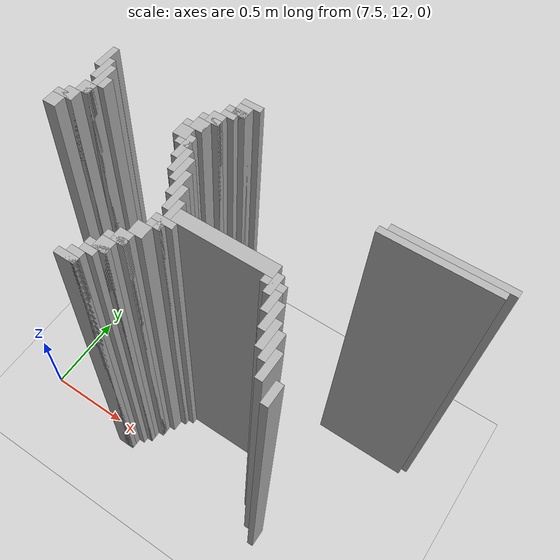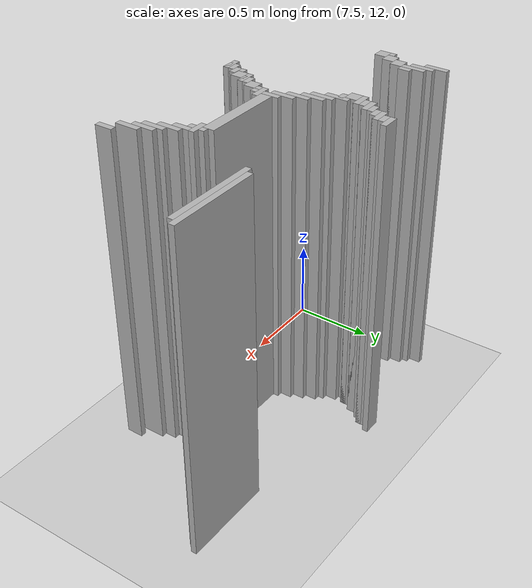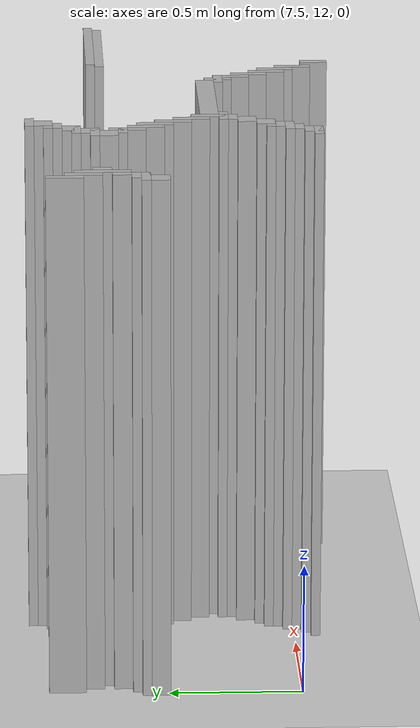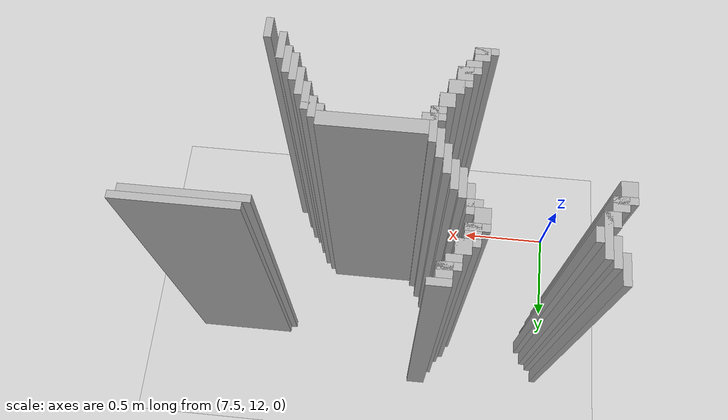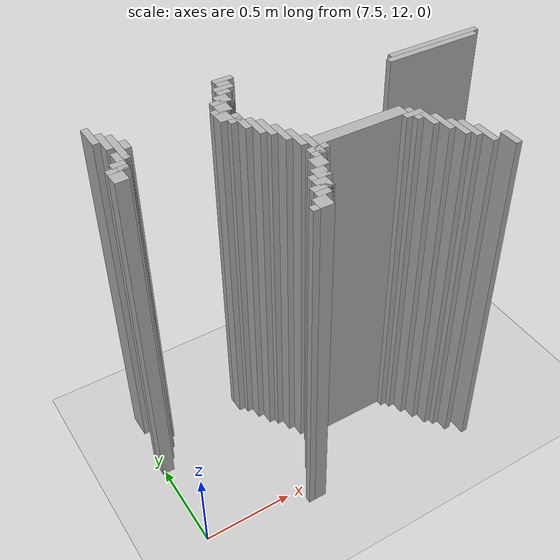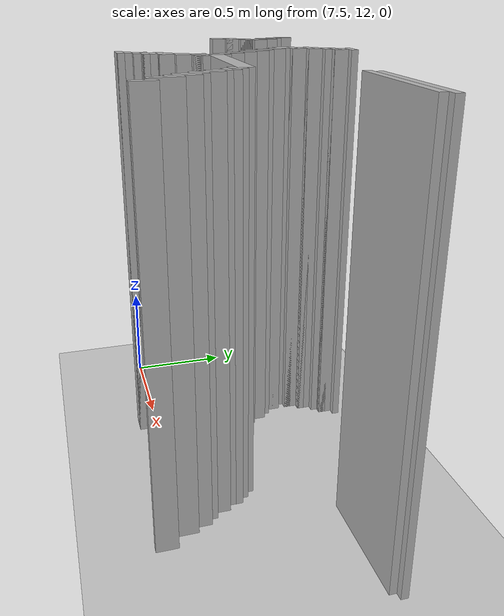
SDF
<sdf version="1.6">
 <world name="slam_world">
  <model name="ground_plane">
   <static>true</static>
   <link name="link">
    <collision name="collision">
     <geometry><plane><normal>0 0 1</normal><size>100 100</size></plane></geometry>
    </collision>
    <visual name="visual">
     <geometry><plane><normal>0 0 1</normal><size>100 100</size></plane></geometry>
     <material>
      <ambient>0.8 0.8 0.8 1</ambient>
      <diffuse>0.8 0.8 0.8 1</diffuse>
      <specular>0.8 0.8 0.8 1</specular>
     </material>
    </visual>
   </link>
  </model>
  <model name="wall_1472">
   <static>true</static>
   <pose>8.265661252900232 12.998839907192576 1.0 0 0 0</pose>
   <link name="link">
    <collision name="collision">
     <geometry><box><size>0.10440835266821345 0.03480278422273782 2.0</size></box></geometry>
    </collision>
    <visual name="visual">
     <geometry><box><size>0.10440835266821345 0.03480278422273782 2.0</size></box></geometry>
     <material><ambient>0.5 0.5 0.5 1</ambient><diffuse>0.7 0.7 0.7 1</diffuse></material>
    </visual>
   </link>
  </model>
  <model name="wall_1488">
   <static>true</static>
   <pose>8.248259860788863 12.946635730858468 1.0 0 0 0</pose>
   <link name="link">
    <collision name="collision">
     <geometry><box><size>0.06960556844547564 0.06960556844547564 2.0</size></box></geometry>
    </collision>
    <visual name="visual">
     <geometry><box><size>0.06960556844547564 0.06960556844547564 2.0</size></box></geometry>
     <material><ambient>0.5 0.5 0.5 1</ambient><diffuse>0.7 0.7 0.7 1</diffuse></material>
    </visual>
   </link>
  </model>
  <model name="wall_1503">
   <static>true</static>
   <pose>7.534802784222737 12.877030162412993 1.0 0 0 0</pose>
   <link name="link">
    <collision name="collision">
     <geometry><box><size>0.03480278422273782 0.13921113689095127 2.0</size></box></geometry>
    </collision>
    <visual name="visual">
     <geometry><box><size>0.03480278422273782 0.13921113689095127 2.0</size></box></geometry>
     <material><ambient>0.5 0.5 0.5 1</ambient><diffuse>0.7 0.7 0.7 1</diffuse></material>
    </visual>
   </link>
  </model>
  <model name="wall_1504">
   <static>true</static>
   <pose>8.230858468677495 12.929234338747099 1.0 0 0 0</pose>
   <link name="link">
    <collision name="collision">
     <geometry><box><size>0.10440835266821345 0.03480278422273782 2.0</size></box></geometry>
    </collision>
    <visual name="visual">
     <geometry><box><size>0.10440835266821345 0.03480278422273782 2.0</size></box></geometry>
     <material><ambient>0.5 0.5 0.5 1</ambient><diffuse>0.7 0.7 0.7 1</diffuse></material>
    </visual>
   </link>
  </model>
  <model name="wall_1516">
   <static>true</static>
   <pose>8.213457076566124 12.894431554524362 1.0 0 0 0</pose>
   <link name="link">
    <collision name="collision">
     <geometry><box><size>0.06960556844547564 0.03480278422273782 2.0</size></box></geometry>
    </collision>
    <visual name="visual">
     <geometry><box><size>0.06960556844547564 0.03480278422273782 2.0</size></box></geometry>
     <material><ambient>0.5 0.5 0.5 1</ambient><diffuse>0.7 0.7 0.7 1</diffuse></material>
    </visual>
   </link>
  </model>
  <model name="wall_1528">
   <static>true</static>
   <pose>7.569605568445476 12.807424593967516 1.0 0 0 0</pose>
   <link name="link">
    <collision name="collision">
     <geometry><box><size>0.03480278422273782 0.13921113689095127 2.0</size></box></geometry>
    </collision>
    <visual name="visual">
     <geometry><box><size>0.03480278422273782 0.13921113689095127 2.0</size></box></geometry>
     <material><ambient>0.5 0.5 0.5 1</ambient><diffuse>0.7 0.7 0.7 1</diffuse></material>
    </visual>
   </link>
  </model>
  <model name="wall_1529">
   <static>true</static>
   <pose>8.178654292343387 12.842227378190255 1.0 0 0 0</pose>
   <link name="link">
    <collision name="collision">
     <geometry><box><size>0.06960556844547564 0.06960556844547564 2.0</size></box></geometry>
    </collision>
    <visual name="visual">
     <geometry><box><size>0.06960556844547564 0.06960556844547564 2.0</size></box></geometry>
     <material><ambient>0.5 0.5 0.5 1</ambient><diffuse>0.7 0.7 0.7 1</diffuse></material>
    </visual>
   </link>
  </model>
  <model name="wall_1544">
   <static>true</static>
   <pose>7.604408352668213 12.737819025522041 1.0 0 0 0</pose>
   <link name="link">
    <collision name="collision">
     <geometry><box><size>0.03480278422273782 0.2088167053364269 2.0</size></box></geometry>
    </collision>
    <visual name="visual">
     <geometry><box><size>0.03480278422273782 0.2088167053364269 2.0</size></box></geometry>
     <material><ambient>0.5 0.5 0.5 1</ambient><diffuse>0.7 0.7 0.7 1</diffuse></material>
    </visual>
   </link>
  </model>
  <model name="wall_1545">
   <static>true</static>
   <pose>8.161252900232018 12.824825986078885 1.0 0 0 0</pose>
   <link name="link">
    <collision name="collision">
     <geometry><box><size>0.10440835266821345 0.03480278422273782 2.0</size></box></geometry>
    </collision>
    <visual name="visual">
     <geometry><box><size>0.10440835266821345 0.03480278422273782 2.0</size></box></geometry>
     <material><ambient>0.5 0.5 0.5 1</ambient><diffuse>0.7 0.7 0.7 1</diffuse></material>
    </visual>
   </link>
  </model>
  <model name="wall_1557">
   <static>true</static>
   <pose>8.14385150812065 12.772621809744779 1.0 0 0 0</pose>
   <link name="link">
    <collision name="collision">
     <geometry><box><size>0.06960556844547564 0.06960556844547564 2.0</size></box></geometry>
    </collision>
    <visual name="visual">
     <geometry><box><size>0.06960556844547564 0.06960556844547564 2.0</size></box></geometry>
     <material><ambient>0.5 0.5 0.5 1</ambient><diffuse>0.7 0.7 0.7 1</diffuse></material>
    </visual>
   </link>
  </model>
  <model name="wall_1568">
   <static>true</static>
   <pose>7.6392111368909505 12.737819025522041 1.0 0 0 0</pose>
   <link name="link">
    <collision name="collision">
     <geometry><box><size>0.03480278422273782 0.06960556844547564 2.0</size></box></geometry>
    </collision>
    <visual name="visual">
     <geometry><box><size>0.03480278422273782 0.06960556844547564 2.0</size></box></geometry>
     <material><ambient>0.5 0.5 0.5 1</ambient><diffuse>0.7 0.7 0.7 1</diffuse></material>
    </visual>
   </link>
  </model>
  <model name="wall_1569">
   <static>true</static>
   <pose>8.12645011600928 12.75522041763341 1.0 0 0 0</pose>
   <link name="link">
    <collision name="collision">
     <geometry><box><size>0.10440835266821345 0.03480278422273782 2.0</size></box></geometry>
    </collision>
    <visual name="visual">
     <geometry><box><size>0.10440835266821345 0.03480278422273782 2.0</size></box></geometry>
     <material><ambient>0.5 0.5 0.5 1</ambient><diffuse>0.7 0.7 0.7 1</diffuse></material>
    </visual>
   </link>
  </model>
  <model name="wall_1570">
   <static>true</static>
   <pose>9.361948955916473 12.75522041763341 1.0 0 0 0</pose>
   <link name="link">
    <collision name="collision">
     <geometry><box><size>0.5568445475638051 0.03480278422273782 2.0</size></box></geometry>
    </collision>
    <visual name="visual">
     <geometry><box><size>0.5568445475638051 0.03480278422273782 2.0</size></box></geometry>
     <material><ambient>0.5 0.5 0.5 1</ambient><diffuse>0.7 0.7 0.7 1</diffuse></material>
    </visual>
   </link>
  </model>
  <model name="wall_1580">
   <static>true</static>
   <pose>8.109048723897912 12.703016241299304 1.0 0 0 0</pose>
   <link name="link">
    <collision name="collision">
     <geometry><box><size>0.06960556844547564 0.06960556844547564 2.0</size></box></geometry>
    </collision>
    <visual name="visual">
     <geometry><box><size>0.06960556844547564 0.06960556844547564 2.0</size></box></geometry>
     <material><ambient>0.5 0.5 0.5 1</ambient><diffuse>0.7 0.7 0.7 1</diffuse></material>
    </visual>
   </link>
  </model>
  <model name="wall_1581">
   <static>true</static>
   <pose>9.327146171693736 12.720417633410673 1.0 0 0 0</pose>
   <link name="link">
    <collision name="collision">
     <geometry><box><size>0.5568445475638051 0.03480278422273782 2.0</size></box></geometry>
    </collision>
    <visual name="visual">
     <geometry><box><size>0.5568445475638051 0.03480278422273782 2.0</size></box></geometry>
     <material><ambient>0.5 0.5 0.5 1</ambient><diffuse>0.7 0.7 0.7 1</diffuse></material>
    </visual>
   </link>
  </model>
  <model name="wall_1591">
   <static>true</static>
   <pose>7.587006960556844 12.668213457076565 1.0 0 0 0</pose>
   <link name="link">
    <collision name="collision">
     <geometry><box><size>0.06960556844547564 0.06960556844547564 2.0</size></box></geometry>
    </collision>
    <visual name="visual">
     <geometry><box><size>0.06960556844547564 0.06960556844547564 2.0</size></box></geometry>
     <material><ambient>0.5 0.5 0.5 1</ambient><diffuse>0.7 0.7 0.7 1</diffuse></material>
    </visual>
   </link>
  </model>
  <model name="wall_1592">
   <static>true</static>
   <pose>8.161252900232018 12.633410672853827 1.0 0 0 0</pose>
   <link name="link">
    <collision name="collision">
     <geometry><box><size>0.03480278422273782 0.13921113689095127 2.0</size></box></geometry>
    </collision>
    <visual name="visual">
     <geometry><box><size>0.03480278422273782 0.13921113689095127 2.0</size></box></geometry>
     <material><ambient>0.5 0.5 0.5 1</ambient><diffuse>0.7 0.7 0.7 1</diffuse></material>
    </visual>
   </link>
  </model>
  <model name="wall_1604">
   <static>true</static>
   <pose>8.14385150812065 12.650812064965196 1.0 0 0 0</pose>
   <link name="link">
    <collision name="collision">
     <geometry><box><size>0.06960556844547564 0.03480278422273782 2.0</size></box></geometry>
    </collision>
    <visual name="visual">
     <geometry><box><size>0.06960556844547564 0.03480278422273782 2.0</size></box></geometry>
     <material><ambient>0.5 0.5 0.5 1</ambient><diffuse>0.7 0.7 0.7 1</diffuse></material>
    </visual>
   </link>
  </model>
  <model name="wall_1615">
   <static>true</static>
   <pose>7.552204176334106 12.59860788863109 1.0 0 0 0</pose>
   <link name="link">
    <collision name="collision">
     <geometry><box><size>0.06960556844547564 0.06960556844547564 2.0</size></box></geometry>
    </collision>
    <visual name="visual">
     <geometry><box><size>0.06960556844547564 0.06960556844547564 2.0</size></box></geometry>
     <material><ambient>0.5 0.5 0.5 1</ambient><diffuse>0.7 0.7 0.7 1</diffuse></material>
    </visual>
   </link>
  </model>
  <model name="wall_1616">
   <static>true</static>
   <pose>8.196055684454755 12.563805104408353 1.0 0 0 0</pose>
   <link name="link">
    <collision name="collision">
     <geometry><box><size>0.03480278422273782 0.13921113689095127 2.0</size></box></geometry>
    </collision>
    <visual name="visual">
     <geometry><box><size>0.03480278422273782 0.13921113689095127 2.0</size></box></geometry>
     <material><ambient>0.5 0.5 0.5 1</ambient><diffuse>0.7 0.7 0.7 1</diffuse></material>
    </visual>
   </link>
  </model>
  <model name="wall_1628">
   <static>true</static>
   <pose>7.534802784222737 12.581206496519721 1.0 0 0 0</pose>
   <link name="link">
    <collision name="collision">
     <geometry><box><size>0.10440835266821345 0.03480278422273782 2.0</size></box></geometry>
    </collision>
    <visual name="visual">
     <geometry><box><size>0.10440835266821345 0.03480278422273782 2.0</size></box></geometry>
     <material><ambient>0.5 0.5 0.5 1</ambient><diffuse>0.7 0.7 0.7 1</diffuse></material>
    </visual>
   </link>
  </model>
  <model name="wall_1629">
   <static>true</static>
   <pose>8.230858468677495 12.529002320185615 1.0 0 0 0</pose>
   <link name="link">
    <collision name="collision">
     <geometry><box><size>0.03480278422273782 0.13921113689095127 2.0</size></box></geometry>
    </collision>
    <visual name="visual">
     <geometry><box><size>0.03480278422273782 0.13921113689095127 2.0</size></box></geometry>
     <material><ambient>0.5 0.5 0.5 1</ambient><diffuse>0.7 0.7 0.7 1</diffuse></material>
    </visual>
   </link>
  </model>
  <model name="wall_1640">
   <static>true</static>
   <pose>7.517401392111369 12.529002320185615 1.0 0 0 0</pose>
   <link name="link">
    <collision name="collision">
     <geometry><box><size>0.06960556844547564 0.06960556844547564 2.0</size></box></geometry>
    </collision>
    <visual name="visual">
     <geometry><box><size>0.06960556844547564 0.06960556844547564 2.0</size></box></geometry>
     <material><ambient>0.5 0.5 0.5 1</ambient><diffuse>0.7 0.7 0.7 1</diffuse></material>
    </visual>
   </link>
  </model>
  <model name="wall_1653">
   <static>true</static>
   <pose>8.265661252900232 12.459396751740138 1.0 0 0 0</pose>
   <link name="link">
    <collision name="collision">
     <geometry><box><size>0.03480278422273782 0.13921113689095127 2.0</size></box></geometry>
    </collision>
    <visual name="visual">
     <geometry><box><size>0.03480278422273782 0.13921113689095127 2.0</size></box></geometry>
     <material><ambient>0.5 0.5 0.5 1</ambient><diffuse>0.7 0.7 0.7 1</diffuse></material>
    </visual>
   </link>
  </model>
  <model name="wall_1674">
   <static>true</static>
   <pose>8.30046403712297 12.389791183294664 1.0 0 0 0</pose>
   <link name="link">
    <collision name="collision">
     <geometry><box><size>0.03480278422273782 0.13921113689095127 2.0</size></box></geometry>
    </collision>
    <visual name="visual">
     <geometry><box><size>0.03480278422273782 0.13921113689095127 2.0</size></box></geometry>
     <material><ambient>0.5 0.5 0.5 1</ambient><diffuse>0.7 0.7 0.7 1</diffuse></material>
    </visual>
   </link>
  </model>
  <model name="wall_1687">
   <static>true</static>
   <pose>8.335266821345707 12.302784222737818 1.0 0 0 0</pose>
   <link name="link">
    <collision name="collision">
     <geometry><box><size>0.03480278422273782 0.17401392111368907 2.0</size></box></geometry>
    </collision>
    <visual name="visual">
     <geometry><box><size>0.03480278422273782 0.17401392111368907 2.0</size></box></geometry>
     <material><ambient>0.5 0.5 0.5 1</ambient><diffuse>0.7 0.7 0.7 1</diffuse></material>
    </visual>
   </link>
  </model>
  <model name="wall_1700">
   <static>true</static>
   <pose>8.596287703016241 12.320185614849187 1.0 0 0 0</pose>
   <link name="link">
    <collision name="collision">
     <geometry><box><size>0.4872389791183295 0.06960556844547564 2.0</size></box></geometry>
    </collision>
    <visual name="visual">
     <geometry><box><size>0.4872389791183295 0.06960556844547564 2.0</size></box></geometry>
     <material><ambient>0.5 0.5 0.5 1</ambient><diffuse>0.7 0.7 0.7 1</diffuse></material>
    </visual>
   </link>
  </model>
  <model name="wall_1712">
   <static>true</static>
   <pose>8.857308584686775 12.267981438515081 1.0 0 0 0</pose>
   <link name="link">
    <collision name="collision">
     <geometry><box><size>0.03480278422273782 0.10440835266821345 2.0</size></box></geometry>
    </collision>
    <visual name="visual">
     <geometry><box><size>0.03480278422273782 0.10440835266821345 2.0</size></box></geometry>
     <material><ambient>0.5 0.5 0.5 1</ambient><diffuse>0.7 0.7 0.7 1</diffuse></material>
    </visual>
   </link>
  </model>
  <model name="wall_1727">
   <static>true</static>
   <pose>8.335266821345707 12.267981438515081 1.0 0 0 0</pose>
   <link name="link">
    <collision name="collision">
     <geometry><box><size>0.10440835266821345 0.03480278422273782 2.0</size></box></geometry>
    </collision>
    <visual name="visual">
     <geometry><box><size>0.10440835266821345 0.03480278422273782 2.0</size></box></geometry>
     <material><ambient>0.5 0.5 0.5 1</ambient><diffuse>0.7 0.7 0.7 1</diffuse></material>
    </visual>
   </link>
  </model>
  <model name="wall_1728">
   <static>true</static>
   <pose>8.857308584686775 12.267981438515081 1.0 0 0 0</pose>
   <link name="link">
    <collision name="collision">
     <geometry><box><size>0.10440835266821345 0.03480278422273782 2.0</size></box></geometry>
    </collision>
    <visual name="visual">
     <geometry><box><size>0.10440835266821345 0.03480278422273782 2.0</size></box></geometry>
     <material><ambient>0.5 0.5 0.5 1</ambient><diffuse>0.7 0.7 0.7 1</diffuse></material>
    </visual>
   </link>
  </model>
  <model name="wall_1745">
   <static>true</static>
   <pose>8.317865429234338 12.233178654292344 1.0 0 0 0</pose>
   <link name="link">
    <collision name="collision">
     <geometry><box><size>0.06960556844547564 0.03480278422273782 2.0</size></box></geometry>
    </collision>
    <visual name="visual">
     <geometry><box><size>0.06960556844547564 0.03480278422273782 2.0</size></box></geometry>
     <material><ambient>0.5 0.5 0.5 1</ambient><diffuse>0.7 0.7 0.7 1</diffuse></material>
    </visual>
   </link>
  </model>
  <model name="wall_1746">
   <static>true</static>
   <pose>8.892111368909513 12.198375870069604 1.0 0 0 0</pose>
   <link name="link">
    <collision name="collision">
     <geometry><box><size>0.03480278422273782 0.10440835266821345 2.0</size></box></geometry>
    </collision>
    <visual name="visual">
     <geometry><box><size>0.03480278422273782 0.10440835266821345 2.0</size></box></geometry>
     <material><ambient>0.5 0.5 0.5 1</ambient><diffuse>0.7 0.7 0.7 1</diffuse></material>
    </visual>
   </link>
  </model>
  <model name="wall_1761">
   <static>true</static>
   <pose>8.2830626450116 12.180974477958236 1.0 0 0 0</pose>
   <link name="link">
    <collision name="collision">
     <geometry><box><size>0.06960556844547564 0.06960556844547564 2.0</size></box></geometry>
    </collision>
    <visual name="visual">
     <geometry><box><size>0.06960556844547564 0.06960556844547564 2.0</size></box></geometry>
     <material><ambient>0.5 0.5 0.5 1</ambient><diffuse>0.7 0.7 0.7 1</diffuse></material>
    </visual>
   </link>
  </model>
  <model name="wall_1762">
   <static>true</static>
   <pose>8.92691415313225 12.146171693735498 1.0 0 0 0</pose>
   <link name="link">
    <collision name="collision">
     <geometry><box><size>0.03480278422273782 0.13921113689095127 2.0</size></box></geometry>
    </collision>
    <visual name="visual">
     <geometry><box><size>0.03480278422273782 0.13921113689095127 2.0</size></box></geometry>
     <material><ambient>0.5 0.5 0.5 1</ambient><diffuse>0.7 0.7 0.7 1</diffuse></material>
    </visual>
   </link>
  </model>
  <model name="wall_1777">
   <static>true</static>
   <pose>8.248259860788863 12.11136890951276 1.0 0 0 0</pose>
   <link name="link">
    <collision name="collision">
     <geometry><box><size>0.06960556844547564 0.06960556844547564 2.0</size></box></geometry>
    </collision>
    <visual name="visual">
     <geometry><box><size>0.06960556844547564 0.06960556844547564 2.0</size></box></geometry>
     <material><ambient>0.5 0.5 0.5 1</ambient><diffuse>0.7 0.7 0.7 1</diffuse></material>
    </visual>
   </link>
  </model>
  <model name="wall_1778">
   <static>true</static>
   <pose>8.961716937354987 12.076566125290023 1.0 0 0 0</pose>
   <link name="link">
    <collision name="collision">
     <geometry><box><size>0.03480278422273782 0.13921113689095127 2.0</size></box></geometry>
    </collision>
    <visual name="visual">
     <geometry><box><size>0.03480278422273782 0.13921113689095127 2.0</size></box></geometry>
     <material><ambient>0.5 0.5 0.5 1</ambient><diffuse>0.7 0.7 0.7 1</diffuse></material>
    </visual>
   </link>
  </model>
  <model name="wall_1793">
   <static>true</static>
   <pose>8.230858468677495 12.093967517401392 1.0 0 0 0</pose>
   <link name="link">
    <collision name="collision">
     <geometry><box><size>0.10440835266821345 0.03480278422273782 2.0</size></box></geometry>
    </collision>
    <visual name="visual">
     <geometry><box><size>0.10440835266821345 0.03480278422273782 2.0</size></box></geometry>
     <material><ambient>0.5 0.5 0.5 1</ambient><diffuse>0.7 0.7 0.7 1</diffuse></material>
    </visual>
   </link>
  </model>
  <model name="wall_1794">
   <static>true</static>
   <pose>8.996519721577727 12.041763341067284 1.0 0 0 0</pose>
   <link name="link">
    <collision name="collision">
     <geometry><box><size>0.03480278422273782 0.13921113689095127 2.0</size></box></geometry>
    </collision>
    <visual name="visual">
     <geometry><box><size>0.03480278422273782 0.13921113689095127 2.0</size></box></geometry>
     <material><ambient>0.5 0.5 0.5 1</ambient><diffuse>0.7 0.7 0.7 1</diffuse></material>
    </visual>
   </link>
  </model>
  <model name="wall_1805">
   <static>true</static>
   <pose>8.213457076566124 12.041763341067284 1.0 0 0 0</pose>
   <link name="link">
    <collision name="collision">
     <geometry><box><size>0.06960556844547564 0.06960556844547564 2.0</size></box></geometry>
    </collision>
    <visual name="visual">
     <geometry><box><size>0.06960556844547564 0.06960556844547564 2.0</size></box></geometry>
     <material><ambient>0.5 0.5 0.5 1</ambient><diffuse>0.7 0.7 0.7 1</diffuse></material>
    </visual>
   </link>
  </model>
  <model name="wall_1819">
   <static>true</static>
   <pose>8.196055684454755 12.024361948955915 1.0 0 0 0</pose>
   <link name="link">
    <collision name="collision">
     <geometry><box><size>0.10440835266821345 0.03480278422273782 2.0</size></box></geometry>
    </collision>
    <visual name="visual">
     <geometry><box><size>0.10440835266821345 0.03480278422273782 2.0</size></box></geometry>
     <material><ambient>0.5 0.5 0.5 1</ambient><diffuse>0.7 0.7 0.7 1</diffuse></material>
    </visual>
   </link>
  </model>
  <model name="wall_1820">
   <static>true</static>
   <pose>9.031322505800464 11.97215777262181 1.0 0 0 0</pose>
   <link name="link">
    <collision name="collision">
     <geometry><box><size>0.03480278422273782 0.13921113689095127 2.0</size></box></geometry>
    </collision>
    <visual name="visual">
     <geometry><box><size>0.03480278422273782 0.13921113689095127 2.0</size></box></geometry>
     <material><ambient>0.5 0.5 0.5 1</ambient><diffuse>0.7 0.7 0.7 1</diffuse></material>
    </visual>
   </link>
  </model>
  <model name="wall_1830">
   <static>true</static>
   <pose>8.178654292343387 11.989559164733178 1.0 0 0 0</pose>
   <link name="link">
    <collision name="collision">
     <geometry><box><size>0.06960556844547564 0.03480278422273782 2.0</size></box></geometry>
    </collision>
    <visual name="visual">
     <geometry><box><size>0.06960556844547564 0.03480278422273782 2.0</size></box></geometry>
     <material><ambient>0.5 0.5 0.5 1</ambient><diffuse>0.7 0.7 0.7 1</diffuse></material>
    </visual>
   </link>
  </model>
  <model name="wall_1842">
   <static>true</static>
   <pose>8.14385150812065 11.937354988399072 1.0 0 0 0</pose>
   <link name="link">
    <collision name="collision">
     <geometry><box><size>0.06960556844547564 0.06960556844547564 2.0</size></box></geometry>
    </collision>
    <visual name="visual">
     <geometry><box><size>0.06960556844547564 0.06960556844547564 2.0</size></box></geometry>
     <material><ambient>0.5 0.5 0.5 1</ambient><diffuse>0.7 0.7 0.7 1</diffuse></material>
    </visual>
   </link>
  </model>
  <model name="wall_1858">
   <static>true</static>
   <pose>8.12645011600928 11.919953596287703 1.0 0 0 0</pose>
   <link name="link">
    <collision name="collision">
     <geometry><box><size>0.10440835266821345 0.03480278422273782 2.0</size></box></geometry>
    </collision>
    <visual name="visual">
     <geometry><box><size>0.10440835266821345 0.03480278422273782 2.0</size></box></geometry>
     <material><ambient>0.5 0.5 0.5 1</ambient><diffuse>0.7 0.7 0.7 1</diffuse></material>
    </visual>
   </link>
  </model>
  <model name="wall_1859">
   <static>true</static>
   <pose>9.100928074245939 11.885150812064964 1.0 0 0 0</pose>
   <link name="link">
    <collision name="collision">
     <geometry><box><size>0.03480278422273782 0.10440835266821345 2.0</size></box></geometry>
    </collision>
    <visual name="visual">
     <geometry><box><size>0.03480278422273782 0.10440835266821345 2.0</size></box></geometry>
     <material><ambient>0.5 0.5 0.5 1</ambient><diffuse>0.7 0.7 0.7 1</diffuse></material>
    </visual>
   </link>
  </model>
 </world>
</sdf>
